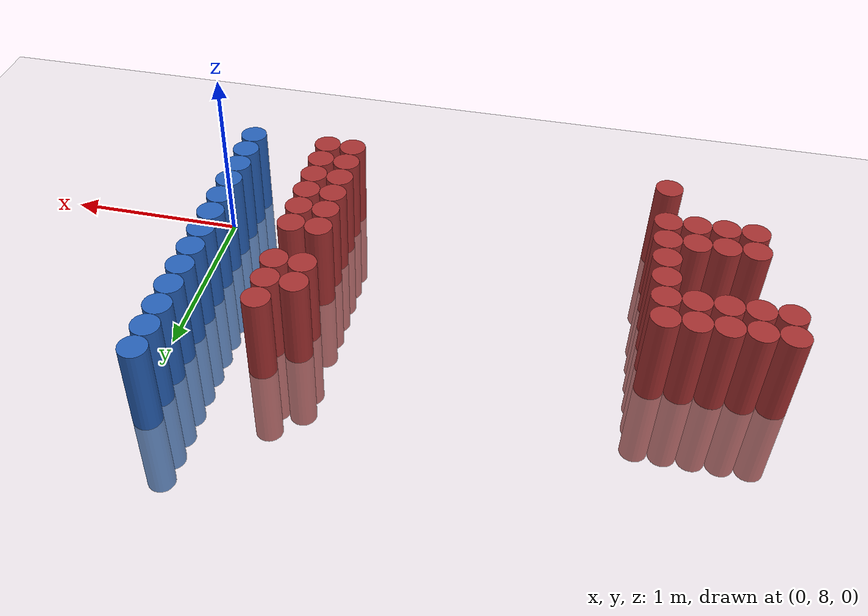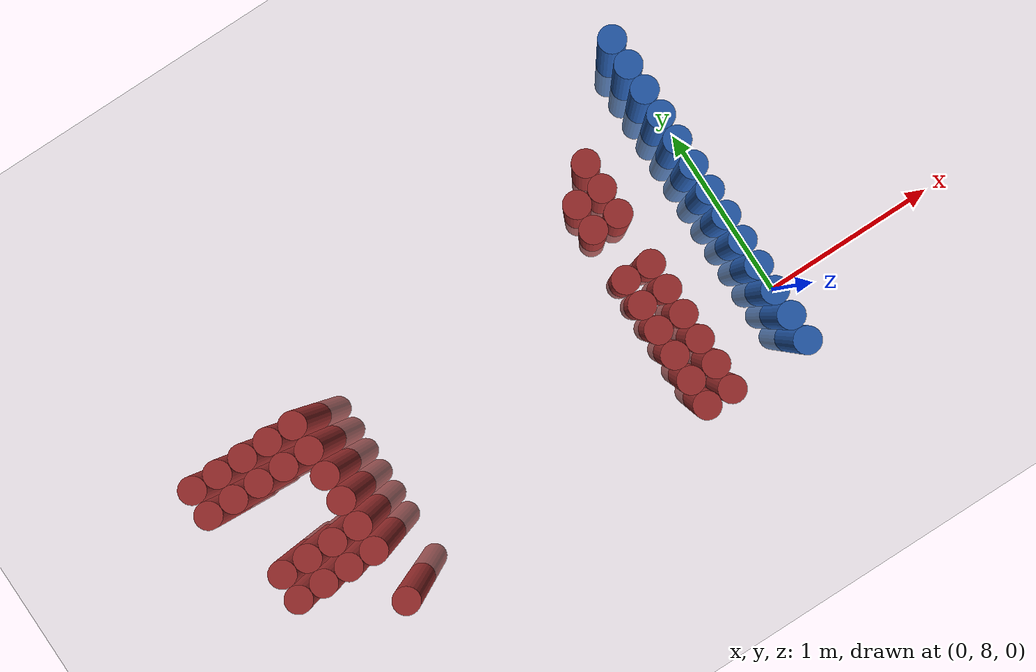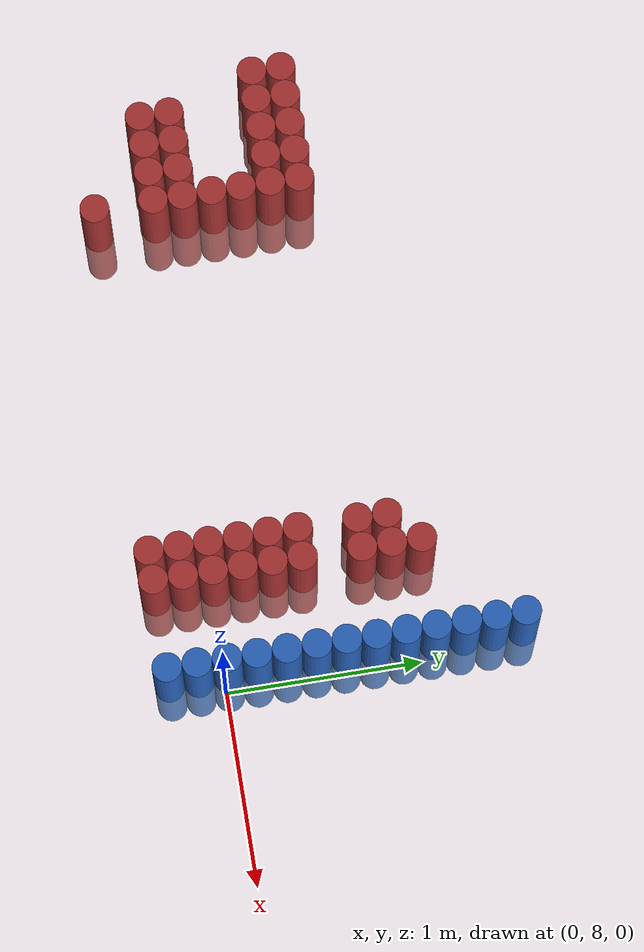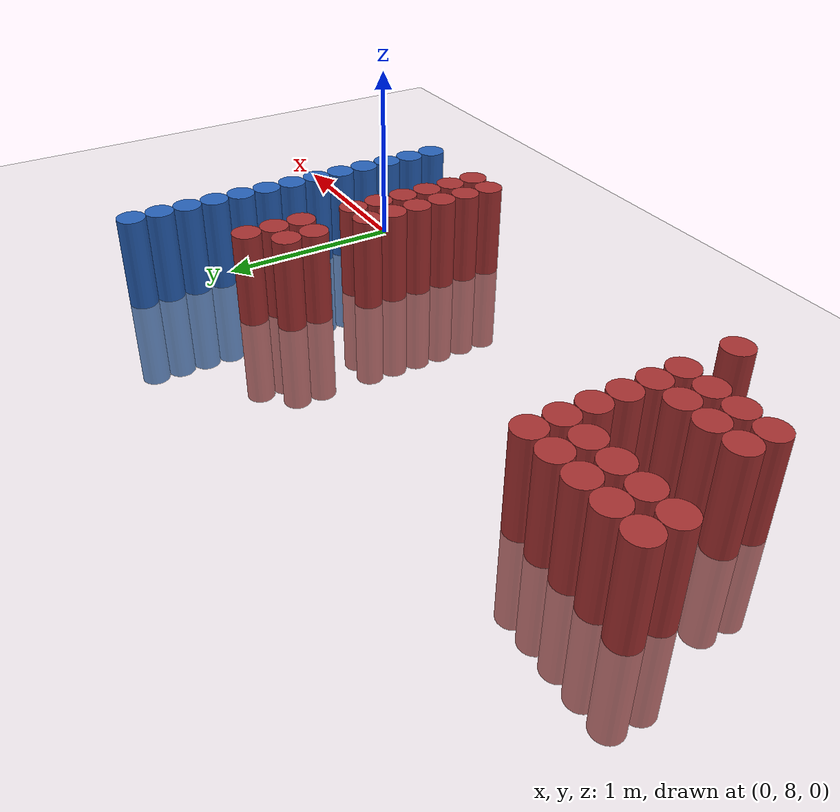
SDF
<sdf version="1.6">
 <world name="default">
  <model name="ground_plane">
   <static>1</static>
   <link name="link">
    <collision name="collision">
     <geometry><plane><normal>0 0 1</normal><size>100 100</size></plane></geometry>
     <surface><friction><ode><mu>100</mu><mu2>50</mu2></ode></friction></surface>
    </collision>
    <visual name="visual">
     <cast_shadows>0</cast_shadows>
     <geometry><plane><normal>0 0 1</normal><size>100 100</size></plane></geometry>
     <material>
      <script><uri>file://media/materials/scripts/gazebo.material</uri><name>Gazebo/Grey</name></script>
     </material>
    </visual>
   </link>
  </model>
  <model name="unit_cylinder_220">
   <static>1</static>
   <pose>-3.075000 8.625000 0.000000 0.000000 0.000000 0.000000</pose>
   <link name="link">
    <inertial>
     <mass>1</mass>
     <inertia><ixx>0.145833</ixx><ixy>0</ixy><ixz>0</ixz><iyy>0.145833</iyy><iyz>0</iyz><izz>0.125</izz></inertia>
    </inertial>
    <collision name="collision">
     <geometry><cylinder><radius>0.075000</radius><length>1</length></cylinder></geometry>
    </collision>
    <visual name="visual">
     <geometry><cylinder><radius>0.075000</radius><length>1</length></cylinder></geometry>
     <material>
      <ambient>0.648000 0.192000 0.192000 1</ambient>
      <diffuse>0.648000 0.192000 0.192000 1</diffuse>
     </material>
     <material>
      <script><name>Gazebo/Grey</name><uri>file://media/materials/scripts/gazebo.material</uri></script>
     </material>
    </visual>
   </link>
  </model>
  <model name="unit_cylinder_221">
   <static>1</static>
   <pose>-3.075000 8.775000 0.000000 0.000000 0.000000 0.000000</pose>
   <link name="link">
    <inertial>
     <mass>1</mass>
     <inertia><ixx>0.145833</ixx><ixy>0</ixy><ixz>0</ixz><iyy>0.145833</iyy><iyz>0</iyz><izz>0.125</izz></inertia>
    </inertial>
    <collision name="collision">
     <geometry><cylinder><radius>0.075000</radius><length>1</length></cylinder></geometry>
    </collision>
    <visual name="visual">
     <geometry><cylinder><radius>0.075000</radius><length>1</length></cylinder></geometry>
     <material>
      <ambient>0.648000 0.192000 0.192000 1</ambient>
      <diffuse>0.648000 0.192000 0.192000 1</diffuse>
     </material>
     <material>
      <script><name>Gazebo/Grey</name><uri>file://media/materials/scripts/gazebo.material</uri></script>
     </material>
    </visual>
   </link>
  </model>
  <model name="unit_cylinder_230">
   <static>1</static>
   <pose>-2.925000 8.025000 0.000000 0.000000 0.000000 0.000000</pose>
   <link name="link">
    <inertial>
     <mass>1</mass>
     <inertia><ixx>0.145833</ixx><ixy>0</ixy><ixz>0</ixz><iyy>0.145833</iyy><iyz>0</iyz><izz>0.125</izz></inertia>
    </inertial>
    <collision name="collision">
     <geometry><cylinder><radius>0.075000</radius><length>1</length></cylinder></geometry>
    </collision>
    <visual name="visual">
     <geometry><cylinder><radius>0.075000</radius><length>1</length></cylinder></geometry>
     <material>
      <ambient>0.648000 0.192000 0.192000 1</ambient>
      <diffuse>0.648000 0.192000 0.192000 1</diffuse>
     </material>
     <material>
      <script><name>Gazebo/Grey</name><uri>file://media/materials/scripts/gazebo.material</uri></script>
     </material>
    </visual>
   </link>
  </model>
  <model name="unit_cylinder_231">
   <static>1</static>
   <pose>-2.925000 8.175000 0.000000 0.000000 0.000000 0.000000</pose>
   <link name="link">
    <inertial>
     <mass>1</mass>
     <inertia><ixx>0.145833</ixx><ixy>0</ixy><ixz>0</ixz><iyy>0.145833</iyy><iyz>0</iyz><izz>0.125</izz></inertia>
    </inertial>
    <collision name="collision">
     <geometry><cylinder><radius>0.075000</radius><length>1</length></cylinder></geometry>
    </collision>
    <visual name="visual">
     <geometry><cylinder><radius>0.075000</radius><length>1</length></cylinder></geometry>
     <material>
      <ambient>0.648000 0.192000 0.192000 1</ambient>
      <diffuse>0.648000 0.192000 0.192000 1</diffuse>
     </material>
     <material>
      <script><name>Gazebo/Grey</name><uri>file://media/materials/scripts/gazebo.material</uri></script>
     </material>
    </visual>
   </link>
  </model>
  <model name="unit_cylinder_232">
   <static>1</static>
   <pose>-2.925000 8.625000 0.000000 0.000000 0.000000 0.000000</pose>
   <link name="link">
    <inertial>
     <mass>1</mass>
     <inertia><ixx>0.145833</ixx><ixy>0</ixy><ixz>0</ixz><iyy>0.145833</iyy><iyz>0</iyz><izz>0.125</izz></inertia>
    </inertial>
    <collision name="collision">
     <geometry><cylinder><radius>0.075000</radius><length>1</length></cylinder></geometry>
    </collision>
    <visual name="visual">
     <geometry><cylinder><radius>0.075000</radius><length>1</length></cylinder></geometry>
     <material>
      <ambient>0.648000 0.192000 0.192000 1</ambient>
      <diffuse>0.648000 0.192000 0.192000 1</diffuse>
     </material>
     <material>
      <script><name>Gazebo/Grey</name><uri>file://media/materials/scripts/gazebo.material</uri></script>
     </material>
    </visual>
   </link>
  </model>
  <model name="unit_cylinder_233">
   <static>1</static>
   <pose>-2.925000 8.775000 0.000000 0.000000 0.000000 0.000000</pose>
   <link name="link">
    <inertial>
     <mass>1</mass>
     <inertia><ixx>0.145833</ixx><ixy>0</ixy><ixz>0</ixz><iyy>0.145833</iyy><iyz>0</iyz><izz>0.125</izz></inertia>
    </inertial>
    <collision name="collision">
     <geometry><cylinder><radius>0.075000</radius><length>1</length></cylinder></geometry>
    </collision>
    <visual name="visual">
     <geometry><cylinder><radius>0.075000</radius><length>1</length></cylinder></geometry>
     <material>
      <ambient>0.648000 0.192000 0.192000 1</ambient>
      <diffuse>0.648000 0.192000 0.192000 1</diffuse>
     </material>
     <material>
      <script><name>Gazebo/Grey</name><uri>file://media/materials/scripts/gazebo.material</uri></script>
     </material>
    </visual>
   </link>
  </model>
  <model name="unit_cylinder_242">
   <static>1</static>
   <pose>-2.775000 8.025000 0.000000 0.000000 0.000000 0.000000</pose>
   <link name="link">
    <inertial>
     <mass>1</mass>
     <inertia><ixx>0.145833</ixx><ixy>0</ixy><ixz>0</ixz><iyy>0.145833</iyy><iyz>0</iyz><izz>0.125</izz></inertia>
    </inertial>
    <collision name="collision">
     <geometry><cylinder><radius>0.075000</radius><length>1</length></cylinder></geometry>
    </collision>
    <visual name="visual">
     <geometry><cylinder><radius>0.075000</radius><length>1</length></cylinder></geometry>
     <material>
      <ambient>0.648000 0.192000 0.192000 1</ambient>
      <diffuse>0.648000 0.192000 0.192000 1</diffuse>
     </material>
     <material>
      <script><name>Gazebo/Grey</name><uri>file://media/materials/scripts/gazebo.material</uri></script>
     </material>
    </visual>
   </link>
  </model>
  <model name="unit_cylinder_243">
   <static>1</static>
   <pose>-2.775000 8.175000 0.000000 0.000000 0.000000 0.000000</pose>
   <link name="link">
    <inertial>
     <mass>1</mass>
     <inertia><ixx>0.145833</ixx><ixy>0</ixy><ixz>0</ixz><iyy>0.145833</iyy><iyz>0</iyz><izz>0.125</izz></inertia>
    </inertial>
    <collision name="collision">
     <geometry><cylinder><radius>0.075000</radius><length>1</length></cylinder></geometry>
    </collision>
    <visual name="visual">
     <geometry><cylinder><radius>0.075000</radius><length>1</length></cylinder></geometry>
     <material>
      <ambient>0.648000 0.192000 0.192000 1</ambient>
      <diffuse>0.648000 0.192000 0.192000 1</diffuse>
     </material>
     <material>
      <script><name>Gazebo/Grey</name><uri>file://media/materials/scripts/gazebo.material</uri></script>
     </material>
    </visual>
   </link>
  </model>
  <model name="unit_cylinder_244">
   <static>1</static>
   <pose>-2.775000 8.625000 0.000000 0.000000 0.000000 0.000000</pose>
   <link name="link">
    <inertial>
     <mass>1</mass>
     <inertia><ixx>0.145833</ixx><ixy>0</ixy><ixz>0</ixz><iyy>0.145833</iyy><iyz>0</iyz><izz>0.125</izz></inertia>
    </inertial>
    <collision name="collision">
     <geometry><cylinder><radius>0.075000</radius><length>1</length></cylinder></geometry>
    </collision>
    <visual name="visual">
     <geometry><cylinder><radius>0.075000</radius><length>1</length></cylinder></geometry>
     <material>
      <ambient>0.648000 0.192000 0.192000 1</ambient>
      <diffuse>0.648000 0.192000 0.192000 1</diffuse>
     </material>
     <material>
      <script><name>Gazebo/Grey</name><uri>file://media/materials/scripts/gazebo.material</uri></script>
     </material>
    </visual>
   </link>
  </model>
  <model name="unit_cylinder_245">
   <static>1</static>
   <pose>-2.775000 8.775000 0.000000 0.000000 0.000000 0.000000</pose>
   <link name="link">
    <inertial>
     <mass>1</mass>
     <inertia><ixx>0.145833</ixx><ixy>0</ixy><ixz>0</ixz><iyy>0.145833</iyy><iyz>0</iyz><izz>0.125</izz></inertia>
    </inertial>
    <collision name="collision">
     <geometry><cylinder><radius>0.075000</radius><length>1</length></cylinder></geometry>
    </collision>
    <visual name="visual">
     <geometry><cylinder><radius>0.075000</radius><length>1</length></cylinder></geometry>
     <material>
      <ambient>0.648000 0.192000 0.192000 1</ambient>
      <diffuse>0.648000 0.192000 0.192000 1</diffuse>
     </material>
     <material>
      <script><name>Gazebo/Grey</name><uri>file://media/materials/scripts/gazebo.material</uri></script>
     </material>
    </visual>
   </link>
  </model>
  <model name="unit_cylinder_255">
   <static>1</static>
   <pose>-2.625000 8.025000 0.000000 0.000000 0.000000 0.000000</pose>
   <link name="link">
    <inertial>
     <mass>1</mass>
     <inertia><ixx>0.145833</ixx><ixy>0</ixy><ixz>0</ixz><iyy>0.145833</iyy><iyz>0</iyz><izz>0.125</izz></inertia>
    </inertial>
    <collision name="collision">
     <geometry><cylinder><radius>0.075000</radius><length>1</length></cylinder></geometry>
    </collision>
    <visual name="visual">
     <geometry><cylinder><radius>0.075000</radius><length>1</length></cylinder></geometry>
     <material>
      <ambient>0.648000 0.192000 0.192000 1</ambient>
      <diffuse>0.648000 0.192000 0.192000 1</diffuse>
     </material>
     <material>
      <script><name>Gazebo/Grey</name><uri>file://media/materials/scripts/gazebo.material</uri></script>
     </material>
    </visual>
   </link>
  </model>
  <model name="unit_cylinder_256">
   <static>1</static>
   <pose>-2.625000 8.175000 0.000000 0.000000 0.000000 0.000000</pose>
   <link name="link">
    <inertial>
     <mass>1</mass>
     <inertia><ixx>0.145833</ixx><ixy>0</ixy><ixz>0</ixz><iyy>0.145833</iyy><iyz>0</iyz><izz>0.125</izz></inertia>
    </inertial>
    <collision name="collision">
     <geometry><cylinder><radius>0.075000</radius><length>1</length></cylinder></geometry>
    </collision>
    <visual name="visual">
     <geometry><cylinder><radius>0.075000</radius><length>1</length></cylinder></geometry>
     <material>
      <ambient>0.648000 0.192000 0.192000 1</ambient>
      <diffuse>0.648000 0.192000 0.192000 1</diffuse>
     </material>
     <material>
      <script><name>Gazebo/Grey</name><uri>file://media/materials/scripts/gazebo.material</uri></script>
     </material>
    </visual>
   </link>
  </model>
  <model name="unit_cylinder_257">
   <static>1</static>
   <pose>-2.625000 8.625000 0.000000 0.000000 0.000000 0.000000</pose>
   <link name="link">
    <inertial>
     <mass>1</mass>
     <inertia><ixx>0.145833</ixx><ixy>0</ixy><ixz>0</ixz><iyy>0.145833</iyy><iyz>0</iyz><izz>0.125</izz></inertia>
    </inertial>
    <collision name="collision">
     <geometry><cylinder><radius>0.075000</radius><length>1</length></cylinder></geometry>
    </collision>
    <visual name="visual">
     <geometry><cylinder><radius>0.075000</radius><length>1</length></cylinder></geometry>
     <material>
      <ambient>0.648000 0.192000 0.192000 1</ambient>
      <diffuse>0.648000 0.192000 0.192000 1</diffuse>
     </material>
     <material>
      <script><name>Gazebo/Grey</name><uri>file://media/materials/scripts/gazebo.material</uri></script>
     </material>
    </visual>
   </link>
  </model>
  <model name="unit_cylinder_258">
   <static>1</static>
   <pose>-2.625000 8.775000 0.000000 0.000000 0.000000 0.000000</pose>
   <link name="link">
    <inertial>
     <mass>1</mass>
     <inertia><ixx>0.145833</ixx><ixy>0</ixy><ixz>0</ixz><iyy>0.145833</iyy><iyz>0</iyz><izz>0.125</izz></inertia>
    </inertial>
    <collision name="collision">
     <geometry><cylinder><radius>0.075000</radius><length>1</length></cylinder></geometry>
    </collision>
    <visual name="visual">
     <geometry><cylinder><radius>0.075000</radius><length>1</length></cylinder></geometry>
     <material>
      <ambient>0.648000 0.192000 0.192000 1</ambient>
      <diffuse>0.648000 0.192000 0.192000 1</diffuse>
     </material>
     <material>
      <script><name>Gazebo/Grey</name><uri>file://media/materials/scripts/gazebo.material</uri></script>
     </material>
    </visual>
   </link>
  </model>
  <model name="unit_cylinder_270">
   <static>1</static>
   <pose>-2.475000 7.725000 0.000000 0.000000 0.000000 0.000000</pose>
   <link name="link">
    <inertial>
     <mass>1</mass>
     <inertia><ixx>0.145833</ixx><ixy>0</ixy><ixz>0</ixz><iyy>0.145833</iyy><iyz>0</iyz><izz>0.125</izz></inertia>
    </inertial>
    <collision name="collision">
     <geometry><cylinder><radius>0.075000</radius><length>1</length></cylinder></geometry>
    </collision>
    <visual name="visual">
     <geometry><cylinder><radius>0.075000</radius><length>1</length></cylinder></geometry>
     <material>
      <ambient>0.648000 0.192000 0.192000 1</ambient>
      <diffuse>0.648000 0.192000 0.192000 1</diffuse>
     </material>
     <material>
      <script><name>Gazebo/Grey</name><uri>file://media/materials/scripts/gazebo.material</uri></script>
     </material>
    </visual>
   </link>
  </model>
  <model name="unit_cylinder_271">
   <static>1</static>
   <pose>-2.475000 8.025000 0.000000 0.000000 0.000000 0.000000</pose>
   <link name="link">
    <inertial>
     <mass>1</mass>
     <inertia><ixx>0.145833</ixx><ixy>0</ixy><ixz>0</ixz><iyy>0.145833</iyy><iyz>0</iyz><izz>0.125</izz></inertia>
    </inertial>
    <collision name="collision">
     <geometry><cylinder><radius>0.075000</radius><length>1</length></cylinder></geometry>
    </collision>
    <visual name="visual">
     <geometry><cylinder><radius>0.075000</radius><length>1</length></cylinder></geometry>
     <material>
      <ambient>0.648000 0.192000 0.192000 1</ambient>
      <diffuse>0.648000 0.192000 0.192000 1</diffuse>
     </material>
     <material>
      <script><name>Gazebo/Grey</name><uri>file://media/materials/scripts/gazebo.material</uri></script>
     </material>
    </visual>
   </link>
  </model>
  <model name="unit_cylinder_272">
   <static>1</static>
   <pose>-2.475000 8.175000 0.000000 0.000000 0.000000 0.000000</pose>
   <link name="link">
    <inertial>
     <mass>1</mass>
     <inertia><ixx>0.145833</ixx><ixy>0</ixy><ixz>0</ixz><iyy>0.145833</iyy><iyz>0</iyz><izz>0.125</izz></inertia>
    </inertial>
    <collision name="collision">
     <geometry><cylinder><radius>0.075000</radius><length>1</length></cylinder></geometry>
    </collision>
    <visual name="visual">
     <geometry><cylinder><radius>0.075000</radius><length>1</length></cylinder></geometry>
     <material>
      <ambient>0.648000 0.192000 0.192000 1</ambient>
      <diffuse>0.648000 0.192000 0.192000 1</diffuse>
     </material>
     <material>
      <script><name>Gazebo/Grey</name><uri>file://media/materials/scripts/gazebo.material</uri></script>
     </material>
    </visual>
   </link>
  </model>
  <model name="unit_cylinder_273">
   <static>1</static>
   <pose>-2.475000 8.325000 0.000000 0.000000 0.000000 0.000000</pose>
   <link name="link">
    <inertial>
     <mass>1</mass>
     <inertia><ixx>0.145833</ixx><ixy>0</ixy><ixz>0</ixz><iyy>0.145833</iyy><iyz>0</iyz><izz>0.125</izz></inertia>
    </inertial>
    <collision name="collision">
     <geometry><cylinder><radius>0.075000</radius><length>1</length></cylinder></geometry>
    </collision>
    <visual name="visual">
     <geometry><cylinder><radius>0.075000</radius><length>1</length></cylinder></geometry>
     <material>
      <ambient>0.648000 0.192000 0.192000 1</ambient>
      <diffuse>0.648000 0.192000 0.192000 1</diffuse>
     </material>
     <material>
      <script><name>Gazebo/Grey</name><uri>file://media/materials/scripts/gazebo.material</uri></script>
     </material>
    </visual>
   </link>
  </model>
  <model name="unit_cylinder_274">
   <static>1</static>
   <pose>-2.475000 8.475000 0.000000 0.000000 0.000000 0.000000</pose>
   <link name="link">
    <inertial>
     <mass>1</mass>
     <inertia><ixx>0.145833</ixx><ixy>0</ixy><ixz>0</ixz><iyy>0.145833</iyy><iyz>0</iyz><izz>0.125</izz></inertia>
    </inertial>
    <collision name="collision">
     <geometry><cylinder><radius>0.075000</radius><length>1</length></cylinder></geometry>
    </collision>
    <visual name="visual">
     <geometry><cylinder><radius>0.075000</radius><length>1</length></cylinder></geometry>
     <material>
      <ambient>0.648000 0.192000 0.192000 1</ambient>
      <diffuse>0.648000 0.192000 0.192000 1</diffuse>
     </material>
     <material>
      <script><name>Gazebo/Grey</name><uri>file://media/materials/scripts/gazebo.material</uri></script>
     </material>
    </visual>
   </link>
  </model>
  <model name="unit_cylinder_275">
   <static>1</static>
   <pose>-2.475000 8.625000 0.000000 0.000000 0.000000 0.000000</pose>
   <link name="link">
    <inertial>
     <mass>1</mass>
     <inertia><ixx>0.145833</ixx><ixy>0</ixy><ixz>0</ixz><iyy>0.145833</iyy><iyz>0</iyz><izz>0.125</izz></inertia>
    </inertial>
    <collision name="collision">
     <geometry><cylinder><radius>0.075000</radius><length>1</length></cylinder></geometry>
    </collision>
    <visual name="visual">
     <geometry><cylinder><radius>0.075000</radius><length>1</length></cylinder></geometry>
     <material>
      <ambient>0.648000 0.192000 0.192000 1</ambient>
      <diffuse>0.648000 0.192000 0.192000 1</diffuse>
     </material>
     <material>
      <script><name>Gazebo/Grey</name><uri>file://media/materials/scripts/gazebo.material</uri></script>
     </material>
    </visual>
   </link>
  </model>
  <model name="unit_cylinder_276">
   <static>1</static>
   <pose>-2.475000 8.775000 0.000000 0.000000 0.000000 0.000000</pose>
   <link name="link">
    <inertial>
     <mass>1</mass>
     <inertia><ixx>0.145833</ixx><ixy>0</ixy><ixz>0</ixz><iyy>0.145833</iyy><iyz>0</iyz><izz>0.125</izz></inertia>
    </inertial>
    <collision name="collision">
     <geometry><cylinder><radius>0.075000</radius><length>1</length></cylinder></geometry>
    </collision>
    <visual name="visual">
     <geometry><cylinder><radius>0.075000</radius><length>1</length></cylinder></geometry>
     <material>
      <ambient>0.648000 0.192000 0.192000 1</ambient>
      <diffuse>0.648000 0.192000 0.192000 1</diffuse>
     </material>
     <material>
      <script><name>Gazebo/Grey</name><uri>file://media/materials/scripts/gazebo.material</uri></script>
     </material>
    </visual>
   </link>
  </model>
  <model name="unit_cylinder_292">
   <static>1</static>
   <pose>-0.675000 7.725000 0.000000 0.000000 0.000000 0.000000</pose>
   <link name="link">
    <inertial>
     <mass>1</mass>
     <inertia><ixx>0.145833</ixx><ixy>0</ixy><ixz>0</ixz><iyy>0.145833</iyy><iyz>0</iyz><izz>0.125</izz></inertia>
    </inertial>
    <collision name="collision">
     <geometry><cylinder><radius>0.075000</radius><length>1</length></cylinder></geometry>
    </collision>
    <visual name="visual">
     <geometry><cylinder><radius>0.075000</radius><length>1</length></cylinder></geometry>
     <material>
      <ambient>0.648000 0.192000 0.192000 1</ambient>
      <diffuse>0.648000 0.192000 0.192000 1</diffuse>
     </material>
     <material>
      <script><name>Gazebo/Grey</name><uri>file://media/materials/scripts/gazebo.material</uri></script>
     </material>
    </visual>
   </link>
  </model>
  <model name="unit_cylinder_293">
   <static>1</static>
   <pose>-0.675000 7.875000 0.000000 0.000000 0.000000 0.000000</pose>
   <link name="link">
    <inertial>
     <mass>1</mass>
     <inertia><ixx>0.145833</ixx><ixy>0</ixy><ixz>0</ixz><iyy>0.145833</iyy><iyz>0</iyz><izz>0.125</izz></inertia>
    </inertial>
    <collision name="collision">
     <geometry><cylinder><radius>0.075000</radius><length>1</length></cylinder></geometry>
    </collision>
    <visual name="visual">
     <geometry><cylinder><radius>0.075000</radius><length>1</length></cylinder></geometry>
     <material>
      <ambient>0.648000 0.192000 0.192000 1</ambient>
      <diffuse>0.648000 0.192000 0.192000 1</diffuse>
     </material>
     <material>
      <script><name>Gazebo/Grey</name><uri>file://media/materials/scripts/gazebo.material</uri></script>
     </material>
    </visual>
   </link>
  </model>
  <model name="unit_cylinder_294">
   <static>1</static>
   <pose>-0.675000 8.025000 0.000000 0.000000 0.000000 0.000000</pose>
   <link name="link">
    <inertial>
     <mass>1</mass>
     <inertia><ixx>0.145833</ixx><ixy>0</ixy><ixz>0</ixz><iyy>0.145833</iyy><iyz>0</iyz><izz>0.125</izz></inertia>
    </inertial>
    <collision name="collision">
     <geometry><cylinder><radius>0.075000</radius><length>1</length></cylinder></geometry>
    </collision>
    <visual name="visual">
     <geometry><cylinder><radius>0.075000</radius><length>1</length></cylinder></geometry>
     <material>
      <ambient>0.648000 0.192000 0.192000 1</ambient>
      <diffuse>0.648000 0.192000 0.192000 1</diffuse>
     </material>
     <material>
      <script><name>Gazebo/Grey</name><uri>file://media/materials/scripts/gazebo.material</uri></script>
     </material>
    </visual>
   </link>
  </model>
  <model name="unit_cylinder_295">
   <static>1</static>
   <pose>-0.675000 8.175000 0.000000 0.000000 0.000000 0.000000</pose>
   <link name="link">
    <inertial>
     <mass>1</mass>
     <inertia><ixx>0.145833</ixx><ixy>0</ixy><ixz>0</ixz><iyy>0.145833</iyy><iyz>0</iyz><izz>0.125</izz></inertia>
    </inertial>
    <collision name="collision">
     <geometry><cylinder><radius>0.075000</radius><length>1</length></cylinder></geometry>
    </collision>
    <visual name="visual">
     <geometry><cylinder><radius>0.075000</radius><length>1</length></cylinder></geometry>
     <material>
      <ambient>0.648000 0.192000 0.192000 1</ambient>
      <diffuse>0.648000 0.192000 0.192000 1</diffuse>
     </material>
     <material>
      <script><name>Gazebo/Grey</name><uri>file://media/materials/scripts/gazebo.material</uri></script>
     </material>
    </visual>
   </link>
  </model>
  <model name="unit_cylinder_296">
   <static>1</static>
   <pose>-0.675000 8.325000 0.000000 0.000000 0.000000 0.000000</pose>
   <link name="link">
    <inertial>
     <mass>1</mass>
     <inertia><ixx>0.145833</ixx><ixy>0</ixy><ixz>0</ixz><iyy>0.145833</iyy><iyz>0</iyz><izz>0.125</izz></inertia>
    </inertial>
    <collision name="collision">
     <geometry><cylinder><radius>0.075000</radius><length>1</length></cylinder></geometry>
    </collision>
    <visual name="visual">
     <geometry><cylinder><radius>0.075000</radius><length>1</length></cylinder></geometry>
     <material>
      <ambient>0.648000 0.192000 0.192000 1</ambient>
      <diffuse>0.648000 0.192000 0.192000 1</diffuse>
     </material>
     <material>
      <script><name>Gazebo/Grey</name><uri>file://media/materials/scripts/gazebo.material</uri></script>
     </material>
    </visual>
   </link>
  </model>
  <model name="unit_cylinder_297">
   <static>1</static>
   <pose>-0.675000 8.475000 0.000000 0.000000 0.000000 0.000000</pose>
   <link name="link">
    <inertial>
     <mass>1</mass>
     <inertia><ixx>0.145833</ixx><ixy>0</ixy><ixz>0</ixz><iyy>0.145833</iyy><iyz>0</iyz><izz>0.125</izz></inertia>
    </inertial>
    <collision name="collision">
     <geometry><cylinder><radius>0.075000</radius><length>1</length></cylinder></geometry>
    </collision>
    <visual name="visual">
     <geometry><cylinder><radius>0.075000</radius><length>1</length></cylinder></geometry>
     <material>
      <ambient>0.648000 0.192000 0.192000 1</ambient>
      <diffuse>0.648000 0.192000 0.192000 1</diffuse>
     </material>
     <material>
      <script><name>Gazebo/Grey</name><uri>file://media/materials/scripts/gazebo.material</uri></script>
     </material>
    </visual>
   </link>
  </model>
  <model name="unit_cylinder_298">
   <static>1</static>
   <pose>-0.675000 8.775000 0.000000 0.000000 0.000000 0.000000</pose>
   <link name="link">
    <inertial>
     <mass>1</mass>
     <inertia><ixx>0.145833</ixx><ixy>0</ixy><ixz>0</ixz><iyy>0.145833</iyy><iyz>0</iyz><izz>0.125</izz></inertia>
    </inertial>
    <collision name="collision">
     <geometry><cylinder><radius>0.075000</radius><length>1</length></cylinder></geometry>
    </collision>
    <visual name="visual">
     <geometry><cylinder><radius>0.075000</radius><length>1</length></cylinder></geometry>
     <material>
      <ambient>0.648000 0.192000 0.192000 1</ambient>
      <diffuse>0.648000 0.192000 0.192000 1</diffuse>
     </material>
     <material>
      <script><name>Gazebo/Grey</name><uri>file://media/materials/scripts/gazebo.material</uri></script>
     </material>
    </visual>
   </link>
  </model>
  <model name="unit_cylinder_299">
   <static>1</static>
   <pose>-0.675000 8.925000 0.000000 0.000000 0.000000 0.000000</pose>
   <link name="link">
    <inertial>
     <mass>1</mass>
     <inertia><ixx>0.145833</ixx><ixy>0</ixy><ixz>0</ixz><iyy>0.145833</iyy><iyz>0</iyz><izz>0.125</izz></inertia>
    </inertial>
    <collision name="collision">
     <geometry><cylinder><radius>0.075000</radius><length>1</length></cylinder></geometry>
    </collision>
    <visual name="visual">
     <geometry><cylinder><radius>0.075000</radius><length>1</length></cylinder></geometry>
     <material>
      <ambient>0.648000 0.192000 0.192000 1</ambient>
      <diffuse>0.648000 0.192000 0.192000 1</diffuse>
     </material>
     <material>
      <script><name>Gazebo/Grey</name><uri>file://media/materials/scripts/gazebo.material</uri></script>
     </material>
    </visual>
   </link>
  </model>
  <model name="unit_cylinder_308">
   <static>1</static>
   <pose>-0.525000 7.725000 0.000000 0.000000 0.000000 0.000000</pose>
   <link name="link">
    <inertial>
     <mass>1</mass>
     <inertia><ixx>0.145833</ixx><ixy>0</ixy><ixz>0</ixz><iyy>0.145833</iyy><iyz>0</iyz><izz>0.125</izz></inertia>
    </inertial>
    <collision name="collision">
     <geometry><cylinder><radius>0.075000</radius><length>1</length></cylinder></geometry>
    </collision>
    <visual name="visual">
     <geometry><cylinder><radius>0.075000</radius><length>1</length></cylinder></geometry>
     <material>
      <ambient>0.648000 0.192000 0.192000 1</ambient>
      <diffuse>0.648000 0.192000 0.192000 1</diffuse>
     </material>
     <material>
      <script><name>Gazebo/Grey</name><uri>file://media/materials/scripts/gazebo.material</uri></script>
     </material>
    </visual>
   </link>
  </model>
  <model name="unit_cylinder_309">
   <static>1</static>
   <pose>-0.525000 7.875000 0.000000 0.000000 0.000000 0.000000</pose>
   <link name="link">
    <inertial>
     <mass>1</mass>
     <inertia><ixx>0.145833</ixx><ixy>0</ixy><ixz>0</ixz><iyy>0.145833</iyy><iyz>0</iyz><izz>0.125</izz></inertia>
    </inertial>
    <collision name="collision">
     <geometry><cylinder><radius>0.075000</radius><length>1</length></cylinder></geometry>
    </collision>
    <visual name="visual">
     <geometry><cylinder><radius>0.075000</radius><length>1</length></cylinder></geometry>
     <material>
      <ambient>0.648000 0.192000 0.192000 1</ambient>
      <diffuse>0.648000 0.192000 0.192000 1</diffuse>
     </material>
     <material>
      <script><name>Gazebo/Grey</name><uri>file://media/materials/scripts/gazebo.material</uri></script>
     </material>
    </visual>
   </link>
  </model>
  <model name="unit_cylinder_310">
   <static>1</static>
   <pose>-0.525000 8.025000 0.000000 0.000000 0.000000 0.000000</pose>
   <link name="link">
    <inertial>
     <mass>1</mass>
     <inertia><ixx>0.145833</ixx><ixy>0</ixy><ixz>0</ixz><iyy>0.145833</iyy><iyz>0</iyz><izz>0.125</izz></inertia>
    </inertial>
    <collision name="collision">
     <geometry><cylinder><radius>0.075000</radius><length>1</length></cylinder></geometry>
    </collision>
    <visual name="visual">
     <geometry><cylinder><radius>0.075000</radius><length>1</length></cylinder></geometry>
     <material>
      <ambient>0.648000 0.192000 0.192000 1</ambient>
      <diffuse>0.648000 0.192000 0.192000 1</diffuse>
     </material>
     <material>
      <script><name>Gazebo/Grey</name><uri>file://media/materials/scripts/gazebo.material</uri></script>
     </material>
    </visual>
   </link>
  </model>
  <model name="unit_cylinder_311">
   <static>1</static>
   <pose>-0.525000 8.175000 0.000000 0.000000 0.000000 0.000000</pose>
   <link name="link">
    <inertial>
     <mass>1</mass>
     <inertia><ixx>0.145833</ixx><ixy>0</ixy><ixz>0</ixz><iyy>0.145833</iyy><iyz>0</iyz><izz>0.125</izz></inertia>
    </inertial>
    <collision name="collision">
     <geometry><cylinder><radius>0.075000</radius><length>1</length></cylinder></geometry>
    </collision>
    <visual name="visual">
     <geometry><cylinder><radius>0.075000</radius><length>1</length></cylinder></geometry>
     <material>
      <ambient>0.648000 0.192000 0.192000 1</ambient>
      <diffuse>0.648000 0.192000 0.192000 1</diffuse>
     </material>
     <material>
      <script><name>Gazebo/Grey</name><uri>file://media/materials/scripts/gazebo.material</uri></script>
     </material>
    </visual>
   </link>
  </model>
  <model name="unit_cylinder_312">
   <static>1</static>
   <pose>-0.525000 8.325000 0.000000 0.000000 0.000000 0.000000</pose>
   <link name="link">
    <inertial>
     <mass>1</mass>
     <inertia><ixx>0.145833</ixx><ixy>0</ixy><ixz>0</ixz><iyy>0.145833</iyy><iyz>0</iyz><izz>0.125</izz></inertia>
    </inertial>
    <collision name="collision">
     <geometry><cylinder><radius>0.075000</radius><length>1</length></cylinder></geometry>
    </collision>
    <visual name="visual">
     <geometry><cylinder><radius>0.075000</radius><length>1</length></cylinder></geometry>
     <material>
      <ambient>0.648000 0.192000 0.192000 1</ambient>
      <diffuse>0.648000 0.192000 0.192000 1</diffuse>
     </material>
     <material>
      <script><name>Gazebo/Grey</name><uri>file://media/materials/scripts/gazebo.material</uri></script>
     </material>
    </visual>
   </link>
  </model>
  <model name="unit_cylinder_313">
   <static>1</static>
   <pose>-0.525000 8.475000 0.000000 0.000000 0.000000 0.000000</pose>
   <link name="link">
    <inertial>
     <mass>1</mass>
     <inertia><ixx>0.145833</ixx><ixy>0</ixy><ixz>0</ixz><iyy>0.145833</iyy><iyz>0</iyz><izz>0.125</izz></inertia>
    </inertial>
    <collision name="collision">
     <geometry><cylinder><radius>0.075000</radius><length>1</length></cylinder></geometry>
    </collision>
    <visual name="visual">
     <geometry><cylinder><radius>0.075000</radius><length>1</length></cylinder></geometry>
     <material>
      <ambient>0.648000 0.192000 0.192000 1</ambient>
      <diffuse>0.648000 0.192000 0.192000 1</diffuse>
     </material>
     <material>
      <script><name>Gazebo/Grey</name><uri>file://media/materials/scripts/gazebo.material</uri></script>
     </material>
    </visual>
   </link>
  </model>
  <model name="unit_cylinder_314">
   <static>1</static>
   <pose>-0.525000 8.775000 0.000000 0.000000 0.000000 0.000000</pose>
   <link name="link">
    <inertial>
     <mass>1</mass>
     <inertia><ixx>0.145833</ixx><ixy>0</ixy><ixz>0</ixz><iyy>0.145833</iyy><iyz>0</iyz><izz>0.125</izz></inertia>
    </inertial>
    <collision name="collision">
     <geometry><cylinder><radius>0.075000</radius><length>1</length></cylinder></geometry>
    </collision>
    <visual name="visual">
     <geometry><cylinder><radius>0.075000</radius><length>1</length></cylinder></geometry>
     <material>
      <ambient>0.648000 0.192000 0.192000 1</ambient>
      <diffuse>0.648000 0.192000 0.192000 1</diffuse>
     </material>
     <material>
      <script><name>Gazebo/Grey</name><uri>file://media/materials/scripts/gazebo.material</uri></script>
     </material>
    </visual>
   </link>
  </model>
  <model name="unit_cylinder_315">
   <static>1</static>
   <pose>-0.525000 8.925000 0.000000 0.000000 0.000000 0.000000</pose>
   <link name="link">
    <inertial>
     <mass>1</mass>
     <inertia><ixx>0.145833</ixx><ixy>0</ixy><ixz>0</ixz><iyy>0.145833</iyy><iyz>0</iyz><izz>0.125</izz></inertia>
    </inertial>
    <collision name="collision">
     <geometry><cylinder><radius>0.075000</radius><length>1</length></cylinder></geometry>
    </collision>
    <visual name="visual">
     <geometry><cylinder><radius>0.075000</radius><length>1</length></cylinder></geometry>
     <material>
      <ambient>0.648000 0.192000 0.192000 1</ambient>
      <diffuse>0.648000 0.192000 0.192000 1</diffuse>
     </material>
     <material>
      <script><name>Gazebo/Grey</name><uri>file://media/materials/scripts/gazebo.material</uri></script>
     </material>
    </visual>
   </link>
  </model>
  <model name="unit_cylinder_316">
   <static>1</static>
   <pose>-0.525000 9.075000 0.000000 0.000000 0.000000 0.000000</pose>
   <link name="link">
    <inertial>
     <mass>1</mass>
     <inertia><ixx>0.145833</ixx><ixy>0</ixy><ixz>0</ixz><iyy>0.145833</iyy><iyz>0</iyz><izz>0.125</izz></inertia>
    </inertial>
    <collision name="collision">
     <geometry><cylinder><radius>0.075000</radius><length>1</length></cylinder></geometry>
    </collision>
    <visual name="visual">
     <geometry><cylinder><radius>0.075000</radius><length>1</length></cylinder></geometry>
     <material>
      <ambient>0.648000 0.192000 0.192000 1</ambient>
      <diffuse>0.648000 0.192000 0.192000 1</diffuse>
     </material>
     <material>
      <script><name>Gazebo/Grey</name><uri>file://media/materials/scripts/gazebo.material</uri></script>
     </material>
    </visual>
   </link>
  </model>
  <model name="unit_cylinder_339">
   <static>1</static>
   <pose>-0.075000 7.725000 0.000000 0.000000 0.000000 0.000000</pose>
   <link name="link">
    <inertial>
     <mass>1</mass>
     <inertia><ixx>0.145833</ixx><ixy>0</ixy><ixz>0</ixz><iyy>0.145833</iyy><iyz>0</iyz><izz>0.125</izz></inertia>
    </inertial>
    <collision name="collision">
     <geometry><cylinder><radius>0.075000</radius><length>1</length></cylinder></geometry>
    </collision>
    <visual name="visual">
     <geometry><cylinder><radius>0.075000</radius><length>1</length></cylinder></geometry>
     <material>
      <ambient>0.152000 0.379000 0.720000 1</ambient>
      <diffuse>0.152000 0.379000 0.720000 1</diffuse>
     </material>
     <material>
      <script><name>Gazebo/Grey</name><uri>file://media/materials/scripts/gazebo.material</uri></script>
     </material>
    </visual>
   </link>
  </model>
  <model name="unit_cylinder_340">
   <static>1</static>
   <pose>-0.075000 7.875000 0.000000 0.000000 0.000000 0.000000</pose>
   <link name="link">
    <inertial>
     <mass>1</mass>
     <inertia><ixx>0.145833</ixx><ixy>0</ixy><ixz>0</ixz><iyy>0.145833</iyy><iyz>0</iyz><izz>0.125</izz></inertia>
    </inertial>
    <collision name="collision">
     <geometry><cylinder><radius>0.075000</radius><length>1</length></cylinder></geometry>
    </collision>
    <visual name="visual">
     <geometry><cylinder><radius>0.075000</radius><length>1</length></cylinder></geometry>
     <material>
      <ambient>0.152000 0.379000 0.720000 1</ambient>
      <diffuse>0.152000 0.379000 0.720000 1</diffuse>
     </material>
     <material>
      <script><name>Gazebo/Grey</name><uri>file://media/materials/scripts/gazebo.material</uri></script>
     </material>
    </visual>
   </link>
  </model>
  <model name="unit_cylinder_341">
   <static>1</static>
   <pose>-0.075000 8.025000 0.000000 0.000000 0.000000 0.000000</pose>
   <link name="link">
    <inertial>
     <mass>1</mass>
     <inertia><ixx>0.145833</ixx><ixy>0</ixy><ixz>0</ixz><iyy>0.145833</iyy><iyz>0</iyz><izz>0.125</izz></inertia>
    </inertial>
    <collision name="collision">
     <geometry><cylinder><radius>0.075000</radius><length>1</length></cylinder></geometry>
    </collision>
    <visual name="visual">
     <geometry><cylinder><radius>0.075000</radius><length>1</length></cylinder></geometry>
     <material>
      <ambient>0.152000 0.379000 0.720000 1</ambient>
      <diffuse>0.152000 0.379000 0.720000 1</diffuse>
     </material>
     <material>
      <script><name>Gazebo/Grey</name><uri>file://media/materials/scripts/gazebo.material</uri></script>
     </material>
    </visual>
   </link>
  </model>
  <model name="unit_cylinder_342">
   <static>1</static>
   <pose>-0.075000 8.175000 0.000000 0.000000 0.000000 0.000000</pose>
   <link name="link">
    <inertial>
     <mass>1</mass>
     <inertia><ixx>0.145833</ixx><ixy>0</ixy><ixz>0</ixz><iyy>0.145833</iyy><iyz>0</iyz><izz>0.125</izz></inertia>
    </inertial>
    <collision name="collision">
     <geometry><cylinder><radius>0.075000</radius><length>1</length></cylinder></geometry>
    </collision>
    <visual name="visual">
     <geometry><cylinder><radius>0.075000</radius><length>1</length></cylinder></geometry>
     <material>
      <ambient>0.152000 0.379000 0.720000 1</ambient>
      <diffuse>0.152000 0.379000 0.720000 1</diffuse>
     </material>
     <material>
      <script><name>Gazebo/Grey</name><uri>file://media/materials/scripts/gazebo.material</uri></script>
     </material>
    </visual>
   </link>
  </model>
  <model name="unit_cylinder_343">
   <static>1</static>
   <pose>-0.075000 8.325000 0.000000 0.000000 0.000000 0.000000</pose>
   <link name="link">
    <inertial>
     <mass>1</mass>
     <inertia><ixx>0.145833</ixx><ixy>0</ixy><ixz>0</ixz><iyy>0.145833</iyy><iyz>0</iyz><izz>0.125</izz></inertia>
    </inertial>
    <collision name="collision">
     <geometry><cylinder><radius>0.075000</radius><length>1</length></cylinder></geometry>
    </collision>
    <visual name="visual">
     <geometry><cylinder><radius>0.075000</radius><length>1</length></cylinder></geometry>
     <material>
      <ambient>0.152000 0.379000 0.720000 1</ambient>
      <diffuse>0.152000 0.379000 0.720000 1</diffuse>
     </material>
     <material>
      <script><name>Gazebo/Grey</name><uri>file://media/materials/scripts/gazebo.material</uri></script>
     </material>
    </visual>
   </link>
  </model>
  <model name="unit_cylinder_344">
   <static>1</static>
   <pose>-0.075000 8.475000 0.000000 0.000000 0.000000 0.000000</pose>
   <link name="link">
    <inertial>
     <mass>1</mass>
     <inertia><ixx>0.145833</ixx><ixy>0</ixy><ixz>0</ixz><iyy>0.145833</iyy><iyz>0</iyz><izz>0.125</izz></inertia>
    </inertial>
    <collision name="collision">
     <geometry><cylinder><radius>0.075000</radius><length>1</length></cylinder></geometry>
    </collision>
    <visual name="visual">
     <geometry><cylinder><radius>0.075000</radius><length>1</length></cylinder></geometry>
     <material>
      <ambient>0.152000 0.379000 0.720000 1</ambient>
      <diffuse>0.152000 0.379000 0.720000 1</diffuse>
     </material>
     <material>
      <script><name>Gazebo/Grey</name><uri>file://media/materials/scripts/gazebo.material</uri></script>
     </material>
    </visual>
   </link>
  </model>
  <model name="unit_cylinder_345">
   <static>1</static>
   <pose>-0.075000 8.625000 0.000000 0.000000 0.000000 0.000000</pose>
   <link name="link">
    <inertial>
     <mass>1</mass>
     <inertia><ixx>0.145833</ixx><ixy>0</ixy><ixz>0</ixz><iyy>0.145833</iyy><iyz>0</iyz><izz>0.125</izz></inertia>
    </inertial>
    <collision name="collision">
     <geometry><cylinder><radius>0.075000</radius><length>1</length></cylinder></geometry>
    </collision>
    <visual name="visual">
     <geometry><cylinder><radius>0.075000</radius><length>1</length></cylinder></geometry>
     <material>
      <ambient>0.152000 0.379000 0.720000 1</ambient>
      <diffuse>0.152000 0.379000 0.720000 1</diffuse>
     </material>
     <material>
      <script><name>Gazebo/Grey</name><uri>file://media/materials/scripts/gazebo.material</uri></script>
     </material>
    </visual>
   </link>
  </model>
  <model name="unit_cylinder_346">
   <static>1</static>
   <pose>-0.075000 8.775000 0.000000 0.000000 0.000000 0.000000</pose>
   <link name="link">
    <inertial>
     <mass>1</mass>
     <inertia><ixx>0.145833</ixx><ixy>0</ixy><ixz>0</ixz><iyy>0.145833</iyy><iyz>0</iyz><izz>0.125</izz></inertia>
    </inertial>
    <collision name="collision">
     <geometry><cylinder><radius>0.075000</radius><length>1</length></cylinder></geometry>
    </collision>
    <visual name="visual">
     <geometry><cylinder><radius>0.075000</radius><length>1</length></cylinder></geometry>
     <material>
      <ambient>0.152000 0.379000 0.720000 1</ambient>
      <diffuse>0.152000 0.379000 0.720000 1</diffuse>
     </material>
     <material>
      <script><name>Gazebo/Grey</name><uri>file://media/materials/scripts/gazebo.material</uri></script>
     </material>
    </visual>
   </link>
  </model>
  <model name="unit_cylinder_347">
   <static>1</static>
   <pose>-0.075000 8.925000 0.000000 0.000000 0.000000 0.000000</pose>
   <link name="link">
    <inertial>
     <mass>1</mass>
     <inertia><ixx>0.145833</ixx><ixy>0</ixy><ixz>0</ixz><iyy>0.145833</iyy><iyz>0</iyz><izz>0.125</izz></inertia>
    </inertial>
    <collision name="collision">
     <geometry><cylinder><radius>0.075000</radius><length>1</length></cylinder></geometry>
    </collision>
    <visual name="visual">
     <geometry><cylinder><radius>0.075000</radius><length>1</length></cylinder></geometry>
     <material>
      <ambient>0.152000 0.379000 0.720000 1</ambient>
      <diffuse>0.152000 0.379000 0.720000 1</diffuse>
     </material>
     <material>
      <script><name>Gazebo/Grey</name><uri>file://media/materials/scripts/gazebo.material</uri></script>
     </material>
    </visual>
   </link>
  </model>
  <model name="unit_cylinder_348">
   <static>1</static>
   <pose>-0.075000 9.075000 0.000000 0.000000 0.000000 0.000000</pose>
   <link name="link">
    <inertial>
     <mass>1</mass>
     <inertia><ixx>0.145833</ixx><ixy>0</ixy><ixz>0</ixz><iyy>0.145833</iyy><iyz>0</iyz><izz>0.125</izz></inertia>
    </inertial>
    <collision name="collision">
     <geometry><cylinder><radius>0.075000</radius><length>1</length></cylinder></geometry>
    </collision>
    <visual name="visual">
     <geometry><cylinder><radius>0.075000</radius><length>1</length></cylinder></geometry>
     <material>
      <ambient>0.152000 0.379000 0.720000 1</ambient>
      <diffuse>0.152000 0.379000 0.720000 1</diffuse>
     </material>
     <material>
      <script><name>Gazebo/Grey</name><uri>file://media/materials/scripts/gazebo.material</uri></script>
     </material>
    </visual>
   </link>
  </model>
  <model name="unit_cylinder_349">
   <static>1</static>
   <pose>-0.075000 9.225000 0.000000 0.000000 0.000000 0.000000</pose>
   <link name="link">
    <inertial>
     <mass>1</mass>
     <inertia><ixx>0.145833</ixx><ixy>0</ixy><ixz>0</ixz><iyy>0.145833</iyy><iyz>0</iyz><izz>0.125</izz></inertia>
    </inertial>
    <collision name="collision">
     <geometry><cylinder><radius>0.075000</radius><length>1</length></cylinder></geometry>
    </collision>
    <visual name="visual">
     <geometry><cylinder><radius>0.075000</radius><length>1</length></cylinder></geometry>
     <material>
      <ambient>0.152000 0.379000 0.720000 1</ambient>
      <diffuse>0.152000 0.379000 0.720000 1</diffuse>
     </material>
     <material>
      <script><name>Gazebo/Grey</name><uri>file://media/materials/scripts/gazebo.material</uri></script>
     </material>
    </visual>
   </link>
  </model>
  <model name="unit_cylinder_350">
   <static>1</static>
   <pose>-0.075000 9.375000 0.000000 0.000000 0.000000 0.000000</pose>
   <link name="link">
    <inertial>
     <mass>1</mass>
     <inertia><ixx>0.145833</ixx><ixy>0</ixy><ixz>0</ixz><iyy>0.145833</iyy><iyz>0</iyz><izz>0.125</izz></inertia>
    </inertial>
    <collision name="collision">
     <geometry><cylinder><radius>0.075000</radius><length>1</length></cylinder></geometry>
    </collision>
    <visual name="visual">
     <geometry><cylinder><radius>0.075000</radius><length>1</length></cylinder></geometry>
     <material>
      <ambient>0.152000 0.379000 0.720000 1</ambient>
      <diffuse>0.152000 0.379000 0.720000 1</diffuse>
     </material>
     <material>
      <script><name>Gazebo/Grey</name><uri>file://media/materials/scripts/gazebo.material</uri></script>
     </material>
    </visual>
   </link>
  </model>
  <model name="unit_cylinder_351">
   <static>1</static>
   <pose>-0.075000 9.525000 0.000000 0.000000 0.000000 0.000000</pose>
   <link name="link">
    <inertial>
     <mass>1</mass>
     <inertia><ixx>0.145833</ixx><ixy>0</ixy><ixz>0</ixz><iyy>0.145833</iyy><iyz>0</iyz><izz>0.125</izz></inertia>
    </inertial>
    <collision name="collision">
     <geometry><cylinder><radius>0.075000</radius><length>1</length></cylinder></geometry>
    </collision>
    <visual name="visual">
     <geometry><cylinder><radius>0.075000</radius><length>1</length></cylinder></geometry>
     <material>
      <ambient>0.152000 0.379000 0.720000 1</ambient>
      <diffuse>0.152000 0.379000 0.720000 1</diffuse>
     </material>
     <material>
      <script><name>Gazebo/Grey</name><uri>file://media/materials/scripts/gazebo.material</uri></script>
     </material>
    </visual>
   </link>
  </model>
 </world>
</sdf>
